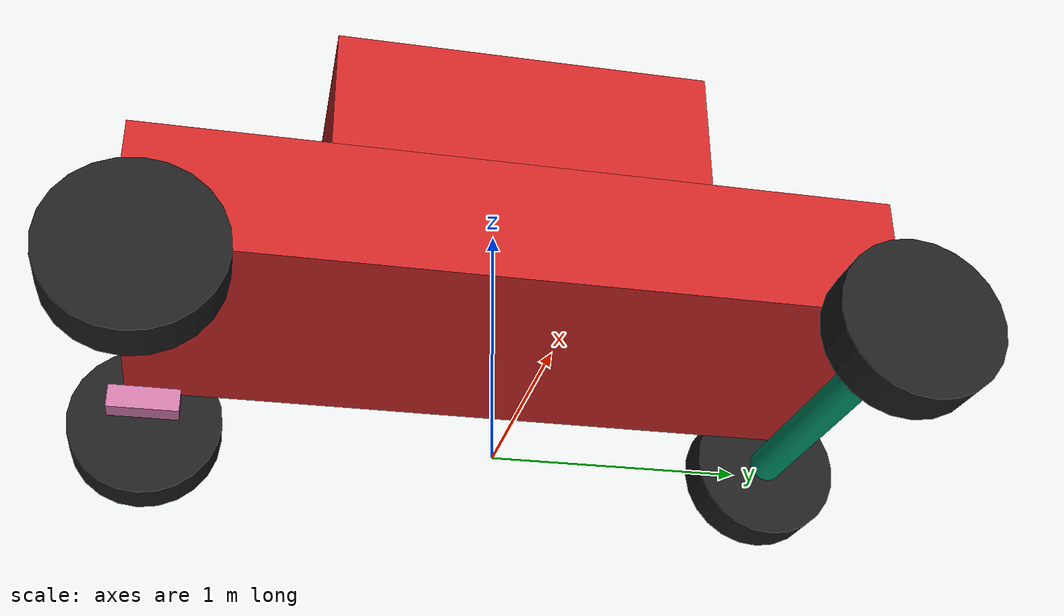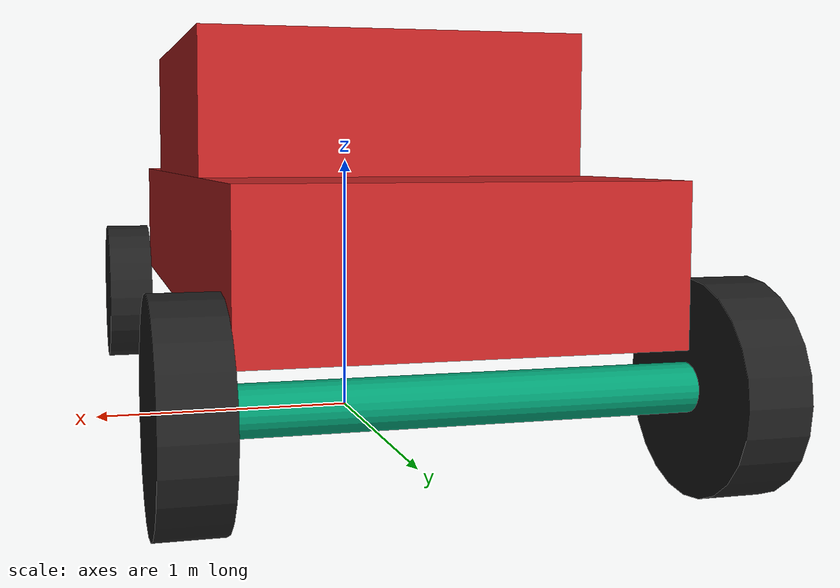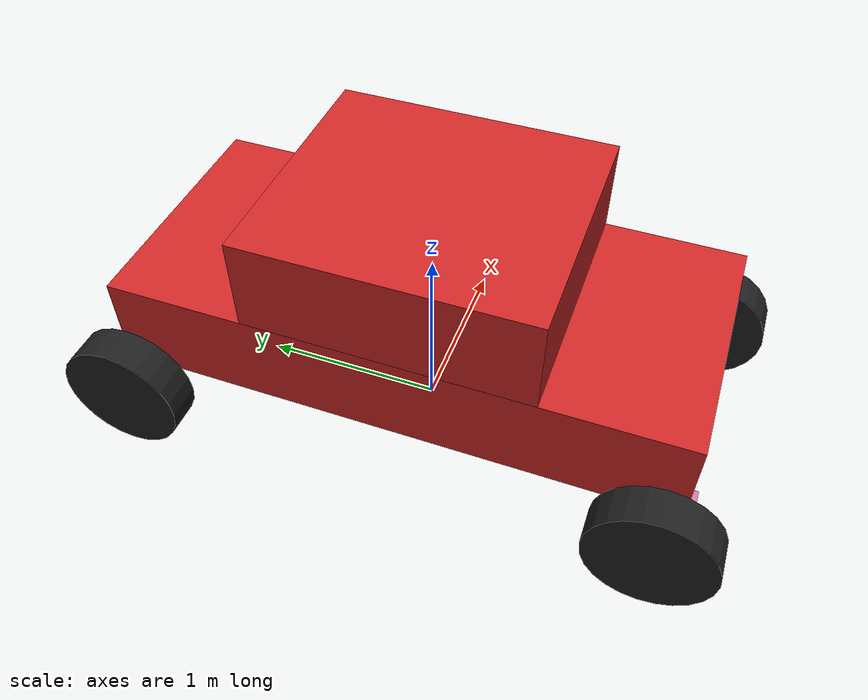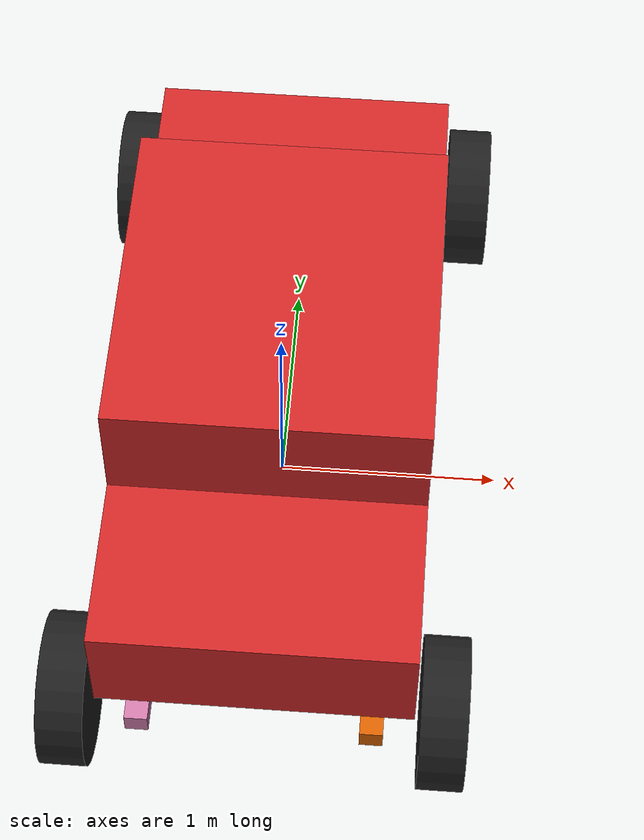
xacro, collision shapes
<?xml version="1.0"?>
<robot name="steering_robot" xmlns:xacro="http://www.ros.org/wiki/xacro">

  <xacro:include filename="$(find autopark)/urdf/chassis.xacro" />
  <xacro:include filename="$(find autopark)/urdf/wheel.xacro" />
  <xacro:include filename="$(find autopark)/urdf/ferrari.gazebo"/>

  <xacro:property name="M_PI" value="3.14159" />

  <!-- parametri costruttivi -->

  <xacro:property name="lunghezza_asse_posteriore" value="1.6" />
  <xacro:property name="raggio_asse_posteriore" value="0.075" />
  <xacro:property name="wheel_length" value="0.2" />
  <xacro:property name="posizione_y_asse_posteriore" value="1.45" />
  <xacro:property name="posizione_z_asse_posteriore" value="0.33" />

  <xacro:property name="steering_link_y" value="${wheel_length + 0.1}" />
  <xacro:property name="steering_link_xz" value="0.1" />

  <xacro:property name="mass_steering_link" value="50" />
  <xacro:property name="str_angle" value="0.6"/>

  <xacro:property name="r200_cam_rgb_px" value="0.005"/>
  <xacro:property name="r200_cam_rgb_py" value="0.018"/>
  <xacro:property name="r200_cam_rgb_pz" value="0.013"/>
  <xacro:property name="r200_cam_depth_offset" value="0.01"/>

  <xacro:macro name="inertial_cuboid" params="m w d h">
      <inertia  ixx="${m*( h*h + d*d)/12}" ixy = "0" ixz = "0"
              iyy="${m*( h*h + w*w)/12}" iyz = "0"
              izz="${m*( w*w + d*d)/12}" />
  </xacro:macro>

  <!--chassis-->

  <xacro:chassis modello="ferrari"/>

  <!--map link -->

  <link name="map">
  </link>

  <joint name="map_joint" type="fixed">
      <parent link="map"/>
      <child link="ferrari_chassis"/>
  </joint>

  <!--rear axle -->

  <link name= "rear_axle">
    <inertial>
      <mass value="30.0"/>
      <origin xyz="0 0 0" rpy="0 0 0"/>
      <xacro:inertial m="30" r="${raggio_asse_posteriore}" h="${lunghezza_asse_posteriore}"/>
    </inertial>
    <visual>
      <origin xyz="0 0 0" rpy="0      1.57079 0"/>
      <geometry>
        <cylinder radius="${raggio_asse_posteriore}" length="${lunghezza_asse_posteriore}"/>
      </geometry>
    </visual>
    <collision>
      <origin xyz="0 0 0" rpy="0      1.57079 0"/>
      <geometry>
        <cylinder radius="${raggio_asse_posteriore}" length="${lunghezza_asse_posteriore}"/>
      </geometry>
    </collision>
  </link>

  <!--joint che collega lo chassis all'asse posteriore del veicolo -->

  <joint name="rear_axle_joint" type="fixed">
      <parent link="ferrari_chassis"/>
      <child link="rear_axle"/>
      <origin xyz="0   ${posizione_y_asse_posteriore} ${posizione_z_asse_posteriore}" rpy="0 0 0"/>
      <axis xyz="1 0 0"/>
  </joint>

  <!--fixed wheels posteriori-->
  <!-- right = -1 ...left = 1 -->

  <xacro:wheel wheel_prefix="rear_right" parent_link="rear_axle" left_right="1">
    <origin xyz="${-lunghezza_asse_posteriore/2 }  0 0" rpy="0 0 0" />
  </xacro:wheel>

  <xacro:wheel wheel_prefix="rear_left" parent_link="rear_axle" left_right="1">
    <origin xyz="${lunghezza_asse_posteriore/2}  0 0" rpy="0 0 0" />
  </xacro:wheel>

  <!-- Transmission rear right wheel -->
  <transmission name="rear_right_wheel_joint_trans">
    <type>transmission_interface/SimpleTransmission</type>
    <joint name="rear_right_wheel_joint">
      <hardwareInterface>hardware_interface/VelocityJointInterface</hardwareInterface>
    </joint>
    <actuator name="rear_right_wheel_joint_motor">
      <hardwareInterface>hardware_interface/VelocityJointInterface</hardwareInterface>
      <mechanicalReduction>1</mechanicalReduction>
    </actuator>
  </transmission>

  <!-- Transmission rear left wheel -->
  <transmission name="rear_left_wheel_joint_trans">
    <type>transmission_interface/SimpleTransmission</type>
    <joint name="rear_left_wheel_joint">
      <hardwareInterface>hardware_interface/VelocityJointInterface</hardwareInterface>
    </joint>
    <actuator name="rear_left_wheel_joint_motor">
      <hardwareInterface>hardware_interface/VelocityJointInterface</hardwareInterface>
      <mechanicalReduction>1</mechanicalReduction>
    </actuator>
  </transmission>

  <!--left link sterzante -->

  <link name="front_left_steering">
    <inertial>
      <mass value="${mass_steering_link}"/>
      <origin xyz="0 0 0" rpy="0 0 0"/>
      <xacro:inertial_cuboid m="${mass_steering_link}" w="${steering_link_xz}"  d="${steering_link_y}" h="${steering_link_xz}"/>
    </inertial>
    <visual>
      <origin xyz="0 0 0" rpy="0 0 0" />
      <geometry>
        <box size="${steering_link_xz} ${steering_link_y} ${steering_link_xz}" />
      </geometry>
    </visual>
    <collision>
      <origin xyz="0 0 0" rpy="0 0 0" />
      <geometry>
        <box size="${steering_link_xz} ${steering_link_y} ${steering_link_xz}" />
      </geometry>
    </collision>

  </link>

  <joint name="front_left_steering_joint" type="revolute">
    <limit lower="${-str_angle}" upper="${str_angle}" effort="10000.0" velocity="1000" />
    <axis xyz="0 0 1" />
    <parent link="ferrari_chassis" />
    <child link="front_left_steering" />
    <origin xyz="${+lunghezza_asse_posteriore/2-steering_link_xz-wheel_length} ${-posizione_y_asse_posteriore + 0.05}  ${posizione_z_asse_posteriore}" rpy="0 0 0"/>

  </joint>

  <!--inserisco la trasmissione-->

  <transmission name="front_left_steering_joint_trasm">
    <type>transmission_interface/SimpleTransmission</type>
    <joint name="front_left_steering_joint">
      <hardwareInterface>hardware_interface/PositionJointInterface</hardwareInterface>
    </joint>
    <actuator name="front_left_steering_joint_motor">
      <hardwareInterface>hardware_interface/PositionJointInterface</hardwareInterface>
      <mechanicalReduction>1</mechanicalReduction>
    </actuator>
  </transmission>

  <!--right_link sterzante -->

  <link name="front_right_steering">
    <inertial>
      <mass value="${mass_steering_link}"/>
      <origin xyz="0 0 0" rpy="0 0 0"/>
      <xacro:inertial_cuboid m="${mass_steering_link}" w="${steering_link_xz}"  d="${steering_link_y}" h="${steering_link_xz}"/>
    </inertial>
    <visual>
      <origin xyz="0 0 0" rpy="0 0 0" />
      <geometry>
        <box size="${steering_link_xz} ${steering_link_y} ${steering_link_xz}" />
      </geometry>
    </visual>

    <collision>
      <origin xyz="0 0 0" rpy="0 0 0" />
      <geometry>
        <box size="${steering_link_xz} ${steering_link_y} ${steering_link_xz}" />
      </geometry>
    </collision>
  </link>

  <joint name="front_right_steering_joint" type="revolute">
    <limit lower="${-str_angle}" upper="${str_angle}" effort="10000.0" velocity="1000.0" />
    <axis xyz="0 0 1" />
    <parent link="ferrari_chassis" />
    <child link="front_right_steering" />
    <origin xyz="${-lunghezza_asse_posteriore/2+steering_link_xz+wheel_length} ${-posizione_y_asse_posteriore + 0.05}  ${posizione_z_asse_posteriore}" rpy="0 0 0"/>
  </joint>

  <!--inserisco la trasmissione-->

  <transmission name="front_right_steering_joint_trasm">
    <type>transmission_interface/SimpleTransmission</type>
    <joint name="front_right_steering_joint">
      <hardwareInterface>hardware_interface/PositionJointInterface</hardwareInterface>
    </joint>
    <actuator name="front_right_steering_joint_motor">
      <hardwareInterface>hardware_interface/PositionJointInterface</hardwareInterface>
      <mechanicalReduction>1</mechanicalReduction>
    </actuator>
  </transmission>

  <!--wheels_sterzanti-->

  <xacro:wheel wheel_prefix="front_right_steering" parent_link="front_left_steering" left_right="-1">
    <origin xyz="0.3  0 0" rpy="0 0 0" />
  </xacro:wheel>

  <xacro:wheel wheel_prefix="front_left_steering" parent_link="front_right_steering" left_right="1">
    <origin xyz="-0.3  0 0" rpy="0 0 0" />
  </xacro:wheel>

  <gazebo>
    <plugin name="gazebo_ros_control" filename="libgazebo_ros_control.so"/>
  </gazebo>

  <!--gazebo reference-->
 <!-- laser scan -->
<xacro:property name="hokuyo_size" value="0.05" />

    <link name="hokuyo_link">
        <visual>
        <origin xyz="0 0 0" rpy="0 0 3.14" />
        <geometry>
            <box size="${hokuyo_size} ${hokuyo_size} ${hokuyo_size}"/>
        </geometry>
        </visual>
    </link>

    <joint name="hokuyo_joint" type="fixed">
        <origin xyz="${base_x_size/1.4} 0 0.7" rpy="0 0 0"/>
        <parent link="ferrari_chassis"/>
        <child link="hokuyo_link" />
    </joint>

    <gazebo reference="hokuyo_link">
        <material>Gazebo/Blue</material>
        <turnGravityOff>false</turnGravityOff>
        <sensor type="ray" name="head_hokuyo_sensor">
        <pose>${hokuyo_size/2} 0 0 0 0 0</pose>
        <visualize>false</visualize>
        <update_rate>40</update_rate>
        <ray>
            <scan>
            <horizontal>
                <samples>720</samples>
                <resolution>1</resolution>
                <min_angle>-1.570796</min_angle>
                <max_angle>1.570796</max_angle>
            </horizontal>
            </scan>
            <range>
            <min>0.10</min>
            <max>4.0</max>
            <resolution>0.001</resolution>
            </range>
        </ray>
        <plugin name="gazebo_ros_head_hokuyo_controller" filename="libgazebo_ros_laser.so">
            <topicName>/scan</topicName>
            <frameName>hokuyo_link</frameName>
        </plugin>
        </sensor>
    </gazebo>

  <gazebo>

          <!-- Groundtruth plugin -->
    <plugin name="robot_groundtruth_sim" filename="libgazebo_ros_p3d.so">
      <alwaysOn>true</alwaysOn>
      <updateRate>100.0</updateRate>
      <bodyName>ferrari_chassis</bodyName>
      <topicName>odom</topicName>
      <gaussianNoise>0.0</gaussianNoise>
      <frameName>map</frameName>
      <xyzOffsets>0 0 0</xyzOffsets>
      <rpyOffsets>0 0 0</rpyOffsets>
    </plugin>
  </gazebo>

</robot>

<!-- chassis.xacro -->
<robot xmlns:xacro="http://www.ros.org/wiki/xacro" name="chassis">

  <!-- Base Properties -->
  <!--prendo le misure della prius hybrid-->
  <xacro:property name="base_x_size" value="1.357" />
  <xacro:property name="base_y_size" value="3" />
  <xacro:property name="base_z_size" value="0.5" />

  <xacro:property name="wheelbase" value="1.9" />
  <xacro:property name="track" value="1.1" />
  <xacro:property name="mass_chassis" value="800" />

  <xacro:macro name="chassis" params ="modello">

  <xacro:macro name="inertial_cuboid" params="m w d h">
      <inertia  ixx="${m*( h*h + d*d)/12}" ixy = "0" ixz = "0"
              iyy="${m*( h*h + w*w)/12}" iyz = "0"
              izz="${m*( w*w + d*d)/12}" />
  </xacro:macro>

  <!--definizione dei colori-->

    <!-- Base link is the center of the robot's bottom plate -->

    <link name="${modello}_chassis">

      <!--caratteristiche inerziali-->
      <inertial>
        <mass value="${mass_chassis}"/>
        <origin xyz="0 0 0" rpy="0 0 0"/>
        <xacro:inertial_cuboid  m="${mass_chassis}"  w="${base_x_size}" d="${base_y_size}"  h="${base_z_size}"/>
      </inertial>

      <!--caratteristiche visuali-->

      <visual>
        <origin xyz="0 0  0.7" rpy="0 0 0"/>
        <geometry>
          <box size="${base_x_size} ${base_y_size} ${base_z_size}"/>
        </geometry>
      </visual>
      <visual>
        <origin xyz="0 0  ${0.7+base_z_size}" rpy="0 0 0"/>
        <geometry>
          <box size="${base_x_size} ${base_y_size/3} ${base_z_size}"/>
        </geometry>
      </visual>
      <!--bombatura laterale-->
      <visual>
        <origin xyz="0 0  0.7" rpy="0 0 0"/>
        <geometry>
          <box size="${base_x_size+0.2} ${base_y_size/1.5} ${base_z_size}"/>
        </geometry>
      </visual>
      <visual>
        <origin xyz="0 0  0.7" rpy="0 0 0"/>
        <geometry>
          <box size="${base_x_size + 0.4} ${base_y_size/2} ${base_z_size}"/>
        </geometry>
      </visual>
      <!--alettone posteriore-->
      <visual>
        <origin xyz="0.5 1.4  ${0.55+base_z_size}" rpy="0 0 0"/>
        <geometry>
          <box size="0.1 0.1 0.3"/>
        </geometry>
      </visual>
      <visual>
        <origin xyz="-0.5 1.4  ${0.55+base_z_size}" rpy="0 0 0"/>
        <geometry>
          <box size="0.1 0.1 0.3"/>
        </geometry>
      </visual>
      <visual>
        <origin xyz="0 1.4  ${0.55+base_z_size+0.2}" rpy="0 0 0"/>
        <geometry>
          <box size="${base_x_size} 0.2 0.1"/>
        </geometry>
      </visual>
      <!--parabrezza-->
      <visual>
        <origin xyz="0 -${base_y_size/3}  ${0.55+base_z_size}" rpy="0.6 0 0"/>
        <geometry>
          <box size="${base_x_size} ${base_x_size} 0.1"/>
        </geometry>
      </visual>
      <!--vetro posteriore-->
      <visual>
        <origin xyz="0 ${base_y_size/4}  ${0.55+base_z_size}" rpy="-0.8 0 0"/>
        <geometry>
          <box size="${base_x_size} ${base_x_size/2+0.2} 0.1"/>
        </geometry>
      </visual>

      <collision>
        <origin xyz="0 0  0.7" rpy="0 0 0"/>
        <geometry>
          <box size="${base_x_size} ${base_y_size} ${base_z_size}"/>
        </geometry>
      </collision>
      <collision>
        <origin xyz="0 0  ${0.7+base_z_size}" rpy="0 0 0"/>
        <geometry>
          <box size="${base_x_size} ${base_y_size/2} ${base_z_size}"/>
        </geometry>
      </collision>

    </link>

    <!--inserisci colori-->

    <gazebo reference="${modello}_chassis">
      <material>Gazebo/Red</material>
    </gazebo>

  </xacro:macro>
</robot>

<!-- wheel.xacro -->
<robot xmlns:xacro="http://www.ros.org/wiki/xacro" name="wheel">

  <!-- Wheel Properties -->

  <xacro:property name="wheel_length" value="0.2" />
  <xacro:property name="wheel_radius" value="0.33" />
  <xacro:property name="mass_wheel" value="30" />

  <xacro:property name="M_PI2" value="1.570796327"  />

  <xacro:macro name="inertial" params="m r h">
    <inertia  ixx="${m*(3*r*r+h*h)/12}" ixy = "0" ixz = "0"
              iyy="${m*(3*r*r+h*h)/12}" iyz = "0"
              izz="${m*r*r/2}" />
  </xacro:macro>

  <xacro:macro name="wheel" params="wheel_prefix parent_link left_right *joint_origin" >

    <link name="${wheel_prefix}_wheel">

      <inertial>
        <mass value="${mass_wheel}" />
        <origin xyz="0 0 0" />
        <xacro:inertial  m="${mass_wheel}" r="${wheel_radius}" h="${wheel_length}" />
      </inertial>

      <visual>
        <origin xyz="0 0 0" rpy="0 0 0" />
        <geometry>
          <mesh filename="package://autopark/urdf/meshes/wheel.dae" scale="0.01 0.01 0.01"/>
        </geometry>
      </visual>

      <collision>
        <origin xyz="0 0 0" rpy="0 ${M_PI2} 0" />
        <geometry>
          <cylinder length="${wheel_length}" radius="${wheel_radius}" />
        </geometry>
        <surface>
                <friction>
                    <ode>
                        <mu>10000000</mu>
                        <mu2>7000</mu2>
                    </ode>
                </friction>
                <bounce>
                    <restitution_coefficient>0.0</restitution_coefficient>
                </bounce>
                <contact>
                    <ode>
                        <soft_cfm>0.001</soft_cfm>
                        <soft_erp>0.5</soft_erp>
                        <kp>10000000</kp>
                        <kd>1</kd>
                    </ode>
                </contact>
            </surface>
      </collision>

    </link>

    <gazebo reference="${wheel_prefix}_wheel">

      <material>Gazebo/Black</material>
      <turnGravityOff>False</turnGravityOff>
    </gazebo>

    <joint name="${wheel_prefix}_wheel_joint" type="continuous">
      <parent link="${parent_link}" />
      <child link="${wheel_prefix}_wheel" />
      <xacro:insert_block name="joint_origin" />
      <axis xyz="1 0 0" />
      <dynamics damping="0.01"/>
      <limit effort="10000" velocity="1000" />
      <joint_properties damping="10" friction="10.0" />
    </joint>

  </xacro:macro>
</robot>
